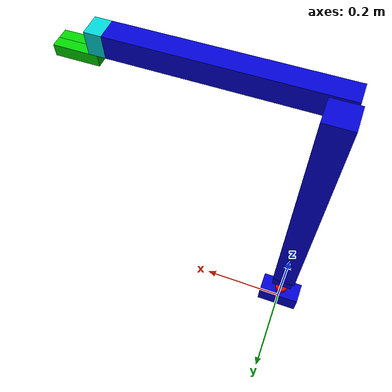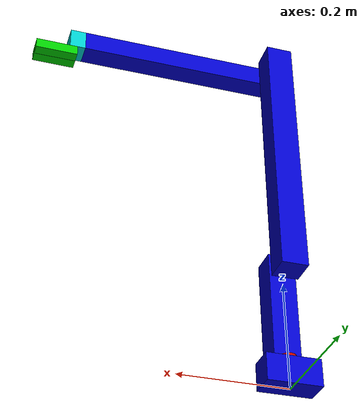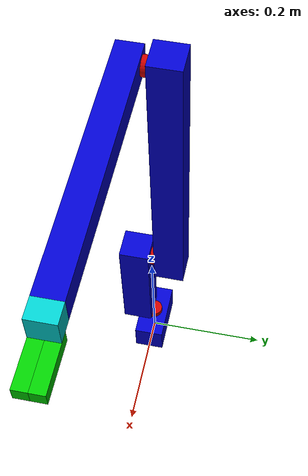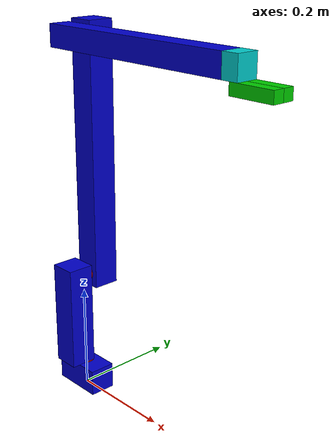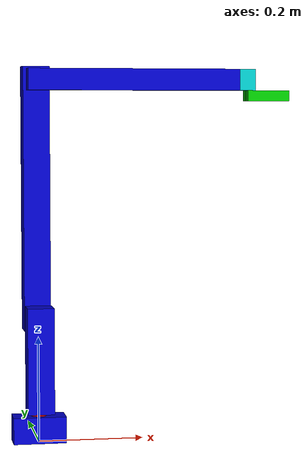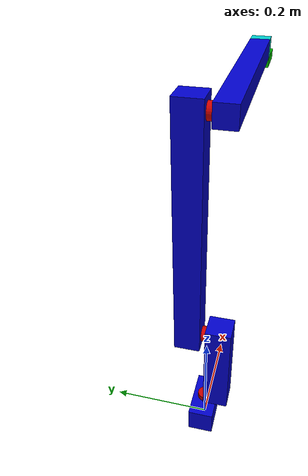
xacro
<?xml version="1.0" ?>

<robot name="arm" xmlns:xacro="http://www.ros.org/wiki/xacro">

	<xacro:include filename="$(find s4a_main)/urdf/helper_macros.xacro"/>

	<gazebo>
		<plugin name="ros_control" filename="libgazebo_ros_control.so">
		</plugin>
	</gazebo>

	<link name="world" />
	<joint name="fixjoint00_world" type="fixed">
		<parent link="world" />
		<child link = "beam00_base" />
		<origin xyz="0.0 0.0 0.0" rpy="0.0 0.0 0.0" />
	</joint>
	 <!-- Along x-axis and bottom to (0, 0, 0). -->
	<xacro:beam
		name="beam00_base"
		size="50" L="100"
		roll="90" yaw="90" z="25"
	/>
	<xacro:weld
		parent="beam00_base"
		name="weld00_base"
		child="bearing00_base"
		z="50"
	/>
	<xacro:bearing
		name="bearing00_base"
		L="10" z="5"
	/>

	<xacro:joint
		parent="bearing00_base"
		name="joint0_shoulder_pan"
		child="beam0_shoulder"
		lo_lim="-90"
		up_lim="90"
		z="10"
	/>
	<xacro:beam
		name="beam0_shoulder"
		size="50" L="200"
		y="-${50/2}" z="${200/2}"
	/>

	<xacro:weld
		parent="beam0_shoulder"
		name="weld0_shoulder"
		child="bearing0_shoulder"
		roll="-90" z="${200-25}" y="0"
	/>
	<xacro:bearing
		name="bearing0_shoulder"
		L="10" z="5"
	/>

	<xacro:joint
		parent="bearing0_shoulder"
		name="joint1_shoulder_lift"
		child="beam1_upper_arm"
		lo_lim="-90"
		up_lim="80"
		yaw="180" z="10"
	/>
	<xacro:beam
		name="beam1_upper_arm"
		size="50" L="500"
		roll="90" z="${50/2}" y="${+(500/2-50/2)}"
	/>
	<xacro:weld
		parent="beam1_upper_arm"
		name="weld1_upper_arm"
		child="bearing1_upper_arm"
		pitch="180" yaw="-90" y="${+(500-2*50/2)}"
	/>
	<xacro:bearing
		name="bearing1_upper_arm"
		L="10" z="5"
	/>

	<xacro:joint
		parent="bearing1_upper_arm"
		name="joint2_elbow"
		child="beam2_forearm"
		lo_lim="-50"
		up_lim="80"
		yaw="180" z="10"
	/>
	<xacro:beam
		name="beam2_forearm"
		size="40" L="400"
		roll="90" z="${40/2}" y="${+(400/2-40/2)}"
	/>
	<xacro:invisible_joint
		parent="beam2_forearm"
		name="fixjoint2_hand_ee"
		child="beam2_hand_ee"
		roll="-90" yaw="+90" z="${40/2}" y="${+(400-40/2)}"
	/>
	<xacro:beam
		name="beam2_hand_ee"
		mat="alu_ee"
		size="40" L="30"
		pitch="90" x="${30/2}"
	/>

	<xacro:include filename="$(find s4a_main)/urdf/hand.urdf.xacro"/>
</robot>

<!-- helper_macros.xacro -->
<robot xmlns:xacro="http://www.ros.org/wiki/xacro">

	<material name="alu">
		<!-- blue -->
		<color rgba="0 0 0.8 1"/>
	</material>

	<material name="bearing">
		<!-- red -->
		<color rgba="0.8 0.0 0.0 1"/>
	</material>

	<material name="wood">
		<!-- green -->
		<color rgba="0 0.8 0 1"/>
	</material>

	<material name="alu_ee">
		<!-- blue -->
		<color rgba="0 0.8 0.8 1"/>
	</material>

	<xacro:macro
		name="beam"
		params="name size L x:=0 y:=0 z:=0 roll:=0 pitch:=0 yaw:=0 mat:=alu"
	>
		<link name="${name}">
			<visual>
				<origin
					xyz="${x*1e-3} ${y*1e-3} ${z*1e-3}"
					rpy="${radians(roll)} ${radians(pitch)} ${radians(yaw)}"
				/>
				<geometry>
					<box size="${size*1e-3} ${size*1e-3} ${L*1e-3}"/>
				</geometry>
				<material name="${mat}"/>
			</visual>
			<collision>
				<origin
					xyz="${x*1e-3} ${y*1e-3} ${z*1e-3}"
					rpy="${radians(roll)} ${radians(pitch)} ${radians(yaw)}"
				/>
				<geometry>
					<box size="${size*1e-3} ${size*1e-3} ${L*1e-3}"/>
				</geometry>
			</collision>
			<!-- TODO Calc -->
			<inertial>
				<origin rpy="0.0 0.0 0.0" xyz="0.0 0.0 0.0"/>
				<mass value="0.0001" />
				<inertia ixx="0.03" iyy="0.03" izz="0.03" ixy="0.0" ixz="0.0" iyz="0.0" />
			</inertial>
		</link>
		<!-- TODO What is this anyway? -->
		<gazebo reference="${name}">
			<selfCollide>true</selfCollide>
		</gazebo>
	</xacro:macro>

	<xacro:macro
		name="weld"
		params="name parent child x:=0 y:=0 z:=0 roll:=0 pitch:=0 yaw:=0"
	>
		<joint name="${name}" type="fixed">
			<origin
				xyz="${x*1e-3} ${y*1e-3} ${z*1e-3}"
				rpy="${radians(roll)} ${radians(pitch)} ${radians(yaw)}"
			/>
			<parent link="${parent}"/>
			<child link="${child}"/>
		</joint>
	</xacro:macro>

	<xacro:macro
		name="bearing"
		params="name L x:=0 y:=0 z:=0 roll:=0 pitch:=0 yaw:=0"
	>
		<link name="${name}">
			<visual>
				<origin
					xyz="${x*1e-3} ${y*1e-3} ${z*1e-3}"
					rpy="${radians(roll)} ${radians(pitch)} ${radians(yaw)}"
				/>
				<geometry>
					<cylinder radius="${15*1e-3}" length="${L*1e-3}" />
				</geometry>
				<material name="bearing"/>
			</visual>
			<collision>
				<origin
					xyz="${x*1e-3} ${y*1e-3} ${z*1e-3}"
					rpy="${radians(roll)} ${radians(pitch)} ${radians(yaw)}"
				/>
				<geometry>
					<cylinder radius="${30*1e-3}" length="${L*1e-3}" />
				</geometry>
			</collision>
			<!-- TODO Calc -->
			<inertial>
				<origin rpy="0.0 0.0 0.0" xyz="0.0 0.0 0.0"/>
				<mass value="0.00001" />
				<inertia ixx="0.03" iyy="0.03" izz="0.03" ixy="0.0" ixz="0.0" iyz="0.0" />
			</inertial>
		</link>
	</xacro:macro>

	<xacro:macro
		name="joint"
		params="name parent child lo_lim:=-180 up_lim:=180 x:=0 y:=0 z:=0 roll:=0 pitch:=0 yaw:=0"
	>
		<joint name="${name}" type="revolute">
			<axis xyz="0 0 1" />
			<limit
				effort="100.0"
				lower="${radians(lo_lim)}"
				upper="${radians(up_lim)}"
				velocity="1.25"
			/>
			<origin
				xyz="${x*1e-3} ${y*1e-3} ${z*1e-3}"
				rpy="${radians(roll)} ${radians(pitch)} ${radians(yaw)}"
			/>
			<parent link="${parent}"/>
			<child link="${child}"/>
		</joint>
		<transmission name="${name}_trans">
			<type>transmission_interface/SimpleTransmission</type>
			<joint name="${name}">
				<hardwareInterface>hardware_interface/EffortJointInterface</hardwareInterface>
			</joint>
			<actuator name="${name}_motor">
				<mechanicalReduction>1</mechanicalReduction>
			</actuator>
		</transmission>
	</xacro:macro>

	<xacro:macro
		name="prismatic_joint"
		params="name parent child lo_lim up_lim x:=0 y:=0 z:=0 roll:=0 pitch:=0 yaw:=0"
	>
		<joint name="${name}" type="prismatic">
			<axis xyz="0 1 0" />
			<limit
				effort="100.0"
				lower="${lo_lim*1e-3}"
				upper="${up_lim*1e-3}"
				velocity="100"
			/>
			<origin
				xyz="${x*1e-3} ${y*1e-3} ${z*1e-3}"
				rpy="${radians(roll)} ${radians(pitch)} ${radians(yaw)}"
			/>
			<parent link="${parent}"/>
			<child link="${child}"/>
		</joint>
	</xacro:macro>

	<xacro:macro
		name="invisible_joint"
		params="name parent child x:=0 y:=0 z:=0 roll:=0 pitch:=0 yaw:=0"
	>
		<joint name="${name}" type="fixed">
			<axis xyz="0 0 1" />
			<origin
				xyz="${x*1e-3} ${y*1e-3} ${z*1e-3}"
				rpy="${radians(roll)} ${radians(pitch)} ${radians(yaw)}"
			/>
			<parent link="${parent}"/>
			<child link="${child}"/>
		</joint>
	</xacro:macro>

</robot>
